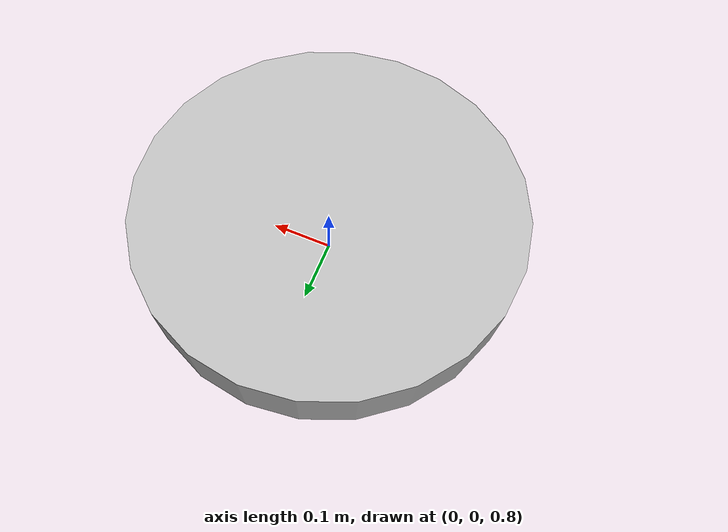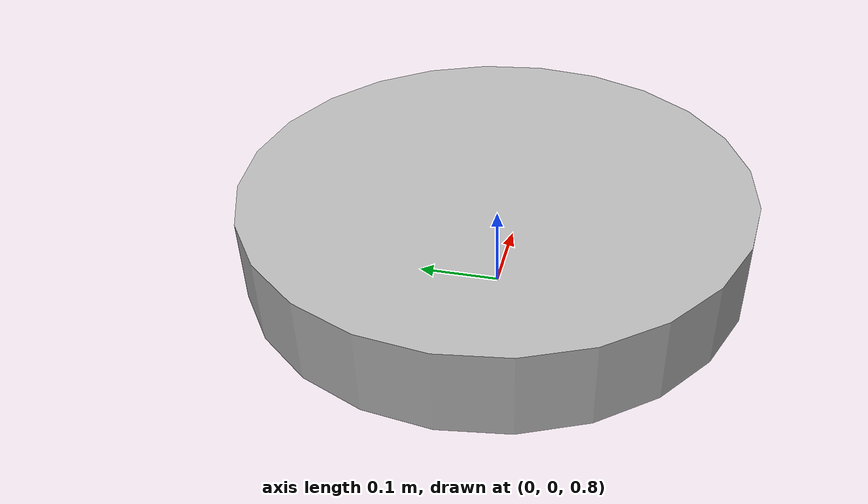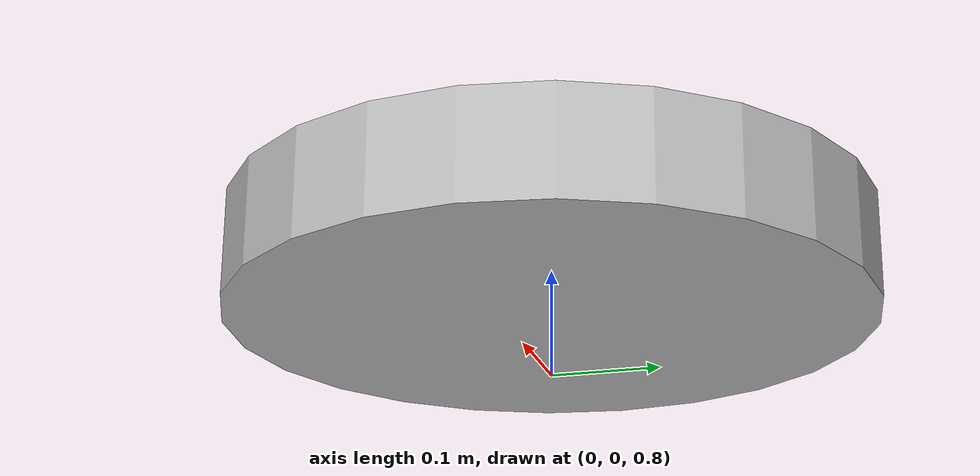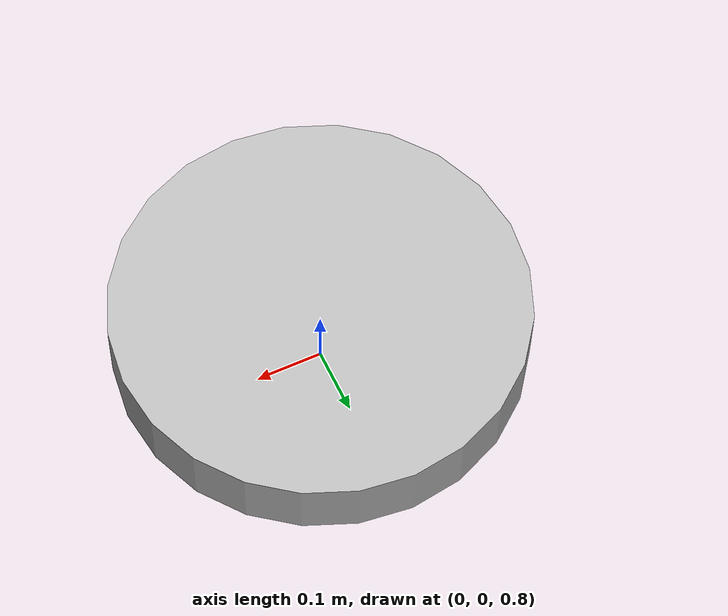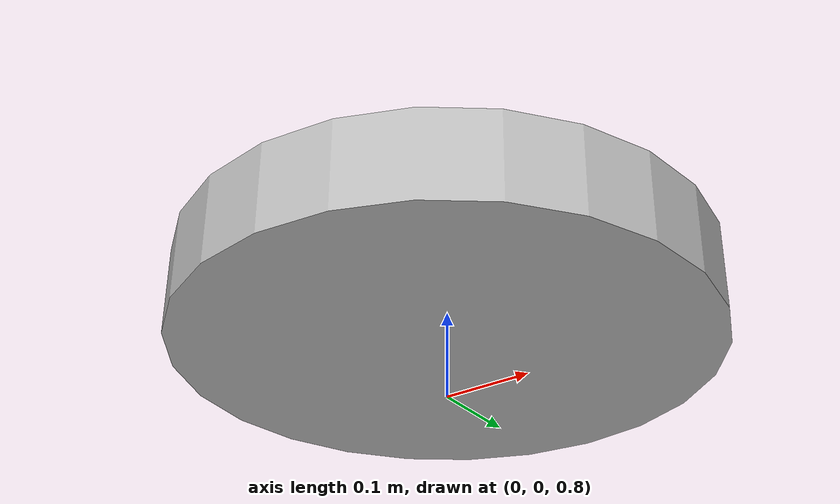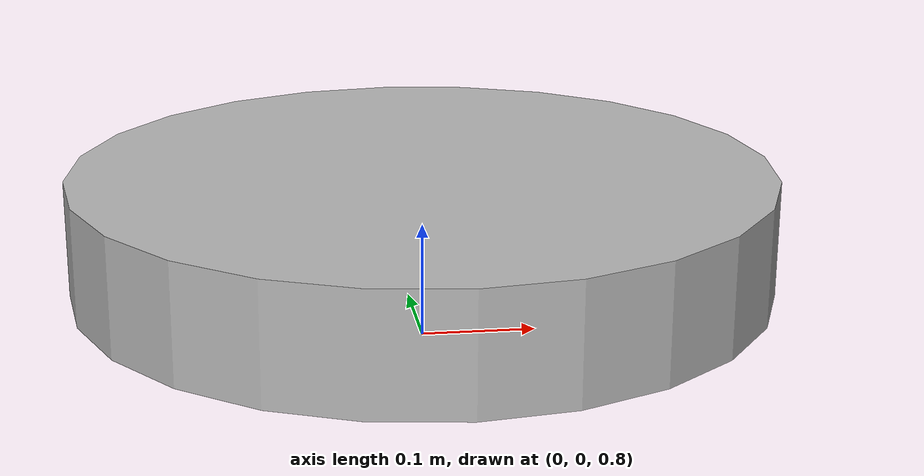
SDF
<?xml version='1.0'?>
<sdf version='1.6'>
		<model name="BodyCylinder">
			<self_collide>true</self_collide>
			<pose>0.0 0.0 0.0 0.0 0.0 0.0</pose>
			<!-- Start of parts of the pmodel BodyCylinder -->
			<!-- End of parts of the pmodel BodyCylinder -->

			<!-- Start of links of the pmodel BodyCylinder -->
			<!-- link full name is BodyCylinder::Tip -->
			<link name="1-Tip">
					<pose>0.0 0.0 0.0 0.0 0.0 0.0</pose>
					<inertial>
						<pose>0.0 0.0 0.0 0.0 0.0 0.0</pose>
						<inertia>
							<ixx>1.0</ixx>
							<ixy>0.0</ixy>
							<ixz>0.0</ixz>
							<iyy>1.0</iyy>
							<iyz>0.0</iyz>
							<izz>1.0</izz>
						</inertia>
						<mass>1.0</mass>
					</inertial>
					<!-- body full name is BodyCylinder::Tip::my_body -->
					<collision name="1--my_body">
						<laser_retro>0.0</laser_retro>
						<pose>0.0 0.0 0.8999999761581421 0.0 0.0 0.0</pose>
						<geometry>
							<cylinder>
								<radius>0.30000001192092896</radius>
								<length>0.10000000149011612</length>
							</cylinder>
						</geometry>
						<surface>
							<bounce>
								<restitution_coefficient>0.0</restitution_coefficient>
								<threshold>100000.0</threshold>
							</bounce>
							<friction>
								<ode>
									<mu>1.0</mu>
									<mu2>1.0</mu2>
									<fdir1>0.0 0.0 0.0</fdir1>
									<slip1>0.0</slip1>
									<slip2>0.0</slip2>
								</ode>
								<torsional>
									<coefficient>1.0</coefficient>
									<surface_radius>0.0</surface_radius>
								</torsional>
							</friction>
						</surface>
					</collision>
					<visual name="1--my_body">
						<laser_retro>0.0</laser_retro>
						<pose>0.0 0.0 0.8999999761581421 0.0 0.0 0.0</pose>
						<geometry>
							<cylinder>
								<radius>0.30000001192092896</radius>
								<length>0.10000000149011612</length>
							</cylinder>
						</geometry>
						<surface>
							<bounce>
								<restitution_coefficient>0.0</restitution_coefficient>
								<threshold>100000.0</threshold>
							</bounce>
							<friction>
								<ode>
									<mu>1.0</mu>
									<mu2>1.0</mu2>
									<fdir1>0.0 0.0 0.0</fdir1>
									<slip1>0.0</slip1>
									<slip2>0.0</slip2>
								</ode>
								<torsional>
									<coefficient>1.0</coefficient>
									<surface_radius>0.0</surface_radius>
								</torsional>
							</friction>
						</surface>
					</visual>
			</link>
			<!-- End of links of the pmodel BodyCylinder -->

			<!-- Start of joints of the pmodel BodyCylinder -->
			<!-- End of joints of the pmodel BodyCylinder -->

			<!-- Start of fixed connections of the pmodel BodyCylinder -->
			<!-- End of fixed connections of the pmodel BodyCylinder -->
		</model>
</sdf>
